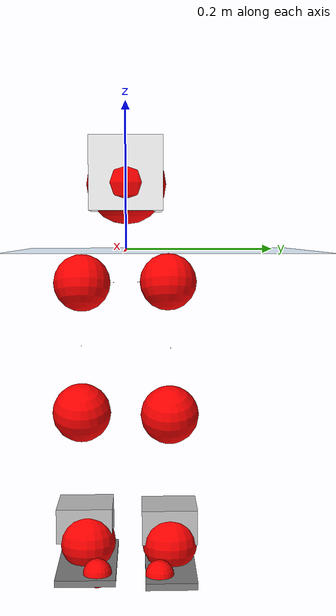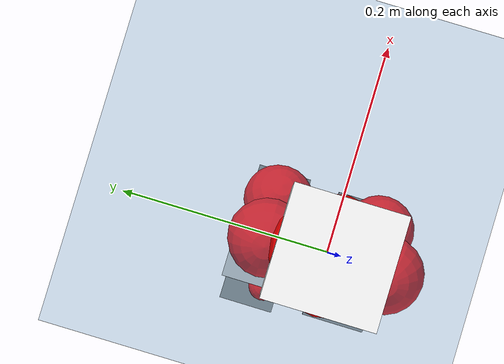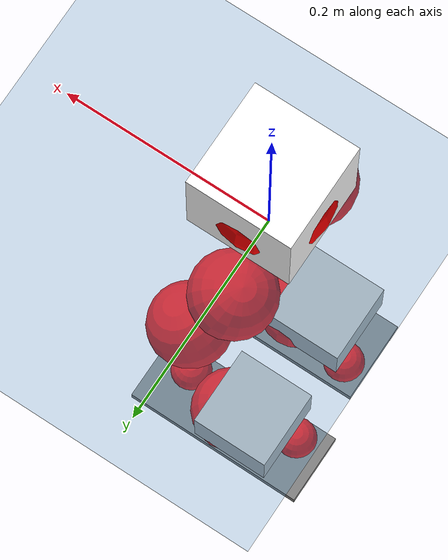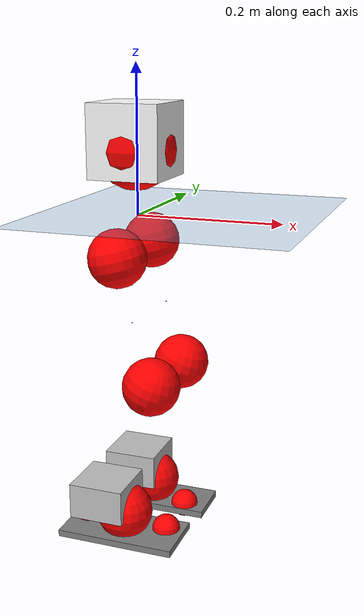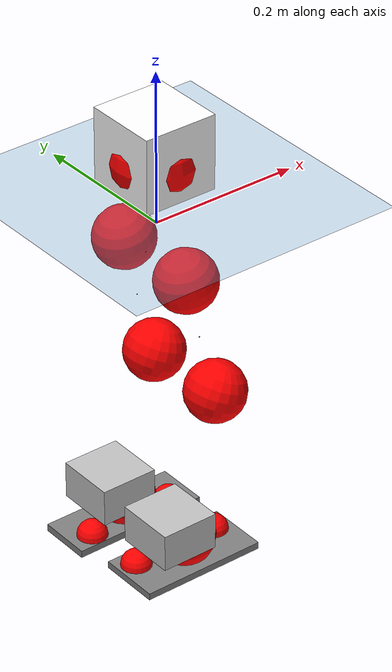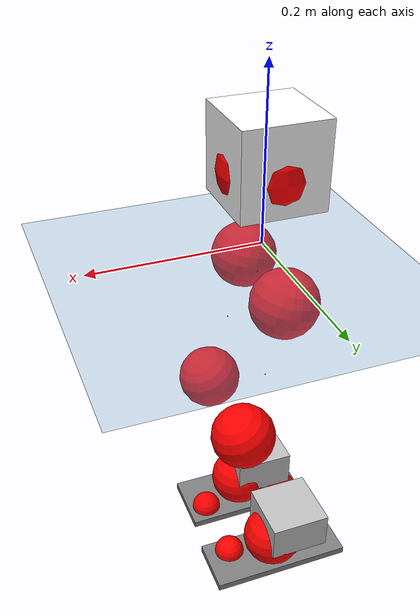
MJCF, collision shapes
<mujoco model="pi_12dof_release_v1">
  <compiler angle="radian" assetdir="assets" balanceinertia="true" inertiafromgeom="false"/>

  <option timestep="0.005" density="1.2" viscosity="2e-05"/>

  <size nkey="1"/>

  <visual>
    <quality shadowsize="8192"/>
    <map shadowclip="0.5"/>
  </visual>

  <default>
    <default class="/">
      <joint armature="0.01" damping="0.01" frictionloss="0.01"/>
      <geom contype="0" conaffinity="0" group="1" solref="-1000 -80"/>
      <site size="0.01 0.005 0.005" group="5"/>
      <general forcelimited="true" biastype="affine" gainprm="20" biasprm="0 -20 -0.5"/>
      <default class="foot">
        <geom size="0.0845 0.036 0.005" type="box" condim="6" group="4" priority="1" friction="0.9 0.2 0.2" solimp="0.015 1 0.005"/>
      </default>
      <default class="reward_collision_sphere">
        <geom group="5" rgba="1 0 0 1"/>
      </default>
    </default>
  </default>

  <asset>
    <texture type="skybox" colorspace="auto" name="//unnamed_texture_0" builtin="gradient" rgb1="0.95 0.95 0.95" rgb2="0.95 0.95 0.95" width="100" height="600"/>
    <texture type="2d" colorspace="auto" name="texplane" builtin="checker" rgb1="0.345 0.575 0.748" rgb2="0.345 0.575 0.748" markrgb="1 1 1" width="512" height="512"/>
    <material name="MatPlane" class="/" texture="texplane" texuniform="true" texrepeat="2 2" specular="0.9"/>
    <mesh name="baselink_1" class="/" file="baselink_1.STL"/>
    <mesh name="r_hip_pitch_link" class="/" file="r_hip_pitch_link.STL"/>
    <mesh name="r_hip_roll_link" class="/" file="r_hip_roll_link.STL"/>
    <mesh name="r_thigh_link" class="/" file="r_thigh_link.STL"/>
    <mesh name="r_calf_link" class="/" file="r_calf_link.STL"/>
    <mesh name="r_ankle_pitch_link" class="/" file="r_ankle_pitch_link.STL"/>
    <mesh name="r_ankle_roll_link" class="/" file="r_ankle_roll_link.STL"/>
    <mesh name="l_hip_pitch_link" class="/" file="l_hip_pitch_link.STL"/>
    <mesh name="l_hip_roll_link" class="/" file="l_hip_roll_link.STL"/>
    <mesh name="l_thigh_link" class="/" file="l_thigh_link.STL"/>
    <mesh name="l_calf_link" class="/" file="l_calf_link.STL"/>
    <mesh name="l_ankle_pitch_link" class="/" file="l_ankle_pitch_link.STL"/>
    <mesh name="l_ankle_roll_link" class="/" file="l_ankle_roll_link.STL"/>
  </asset>

  <worldbody>
    <geom name="floor" class="/" size="100 100 0.125" type="plane" group="0" material="MatPlane"/>
    <light name="toplight_shadow" class="/" pos="0 0 5" dir="0.0990148 0.0990148 -0.990148" type="directional" ambient="0.04 0.04 0.04" diffuse="0.55 0.55 0.55" specular="0.12 0.12 0.12"/>
    <light name="toplight_fill" class="/" pos="0 0 5" dir="0.0990148 0.0990148 -0.990148" type="directional" castshadow="false" ambient="0.04 0.04 0.04" diffuse="0.3 0.3 0.3" specular="0.08 0.08 0.08"/>
    <body name="trunk" pos="-0.00205677 0.000444808 -0.00277687" quat="0.999999 -0.000356817 0.000168794 -0.00115972">
      <inertial pos="-0.000691347 0.00212395 0.0514203" quat="0.695897 0.00398056 0.0128893 0.718015" mass="2.08277" diaginertia="0.00500623 0.00264402 0.0153159"/>
      <joint name="//unnamed_joint_0" type="free"/>
      <geom name="//unnamed_geom_1" class="/" type="mesh" density="0" rgba="1 1 1 1" mesh="baselink_1"/>
      <geom name="//unnamed_geom_2" class="/" size="0.049196 0.049196 0.049196" pos="0 0 0.10373" type="box" rgba="1 1 1 1"/>
      <geom name="//unnamed_geom_3" class="reward_collision_sphere" size="0.0541156" pos="0 0 0.0907634"/>
      <site name="imu" class="/" pos="0.0134814 0.00651398 -0.0129279" size="0.0098392"/>
      <camera name="track" class="/" pos="0 -1.56488 0" quat="0.707107 0.707107 0 0" mode="trackcom"/>
      <camera name="ego_camera" class="/" pos="0.0654525 0 0.233391" quat="-0.5 -0.5 0.5 0.5"/>
      <body name="r_hip_pitch_link" pos="-0.00139099 -0.0181539 -0.0430378" quat="0.992208 0.000216163 -0.124592 -0.000452113">
        <inertial pos="-0.00196234 -0.0438024 -0.00116121" quat="-0.0261489 0.705281 -0.0217173 0.708112" mass="0.352393" diaginertia="5.48191e-05 2.88483e-05 0.000314985"/>
        <joint name="r_hip_pitch_joint" class="/" pos="0 0 0" axis="0.00825084 -0.999966 0.000359312" stiffness="0.00151406" range="-1.77084 1.23838" armature="0.00850096" damping="0.0205704" frictionloss="0.0108811"/>
        <geom name="//unnamed_geom_4" class="/" type="mesh" density="0" rgba="0.75294 0.75294 0.75294 1" mesh="r_hip_pitch_link"/>
        <geom name="//unnamed_geom_5" class="/" size="0.00049196 0.00049196 0.00049196" type="box" rgba="0.75294 0.75294 0.75294 1"/>
        <body name="r_hip_roll_link" pos="-0.0011584 -0.043844 -0.000449489" quat="1 0.000321622 -0.000365034 0.000324885">
          <inertial pos="-0.00138189 -5.17672e-05 -0.0776545" quat="0.706365 -0.0806509 -0.0717896 0.699565" mass="0.361585" diaginertia="0.00016908 7.79e-05 0.000472101"/>
          <joint name="r_hip_roll_joint" class="/" pos="0 0 0" axis="-0.999954 0.00951665 0.00128212" range="-0.121432 0.503439" armature="0.011174" damping="0" frictionloss="0.00864797"/>
          <geom name="//unnamed_geom_6" class="/" type="mesh" density="0" rgba="0.75294 0.75294 0.75294 1" mesh="r_hip_roll_link"/>
          <geom name="//unnamed_geom_7" class="/" size="0.00049196 0.00049196 0.00049196" type="box" rgba="0.75294 0.75294 0.75294 1"/>
          <geom name="//unnamed_geom_8" class="reward_collision_sphere" size="0.0393568"/>
          <body name="r_thigh_link" pos="-0.00186776 -0.000347161 -0.0873729" quat="1 3.79035e-05 -2.33823e-05 -2.93731e-05">
            <inertial pos="-0.00148589 -0.00191197 -0.0593337" quat="0.736329 0.67662 0.000845397 0.00185353" mass="0.106509" diaginertia="6.43138e-05 2.69173e-05 0.000211377"/>
            <joint name="r_thigh_joint" class="/" pos="0 0 0" axis="0.0115892 0.00708453 -0.999908" range="-0.258869 0.642747" armature="0.010396" damping="0" frictionloss="0.0105102"/>
            <geom name="//unnamed_geom_9" class="/" type="mesh" density="0" rgba="0.75294 0.75294 0.75294 1" mesh="r_thigh_link"/>
            <geom name="//unnamed_geom_10" class="/" size="0.00049196 0.00049196 0.00049196" type="box" rgba="0.75294 0.75294 0.75294 1"/>
            <body name="r_calf_link" pos="0.00308222 0.00135676 -0.0912506" quat="0.947637 0.000106956 0.319349 -8.30385e-06">
              <inertial pos="-0.00287096 -0.00304493 -0.0905939" quat="0.999983 -0.00299299 -0.000234148 0.0050464" mass="0.768286" diaginertia="0.00171589 0.00105831 0.000646171"/>
              <joint name="r_calf_joint" class="/" pos="0 0 0" axis="0.0092041 -0.999956 -0.00181067" range="-1.64569 0.650817" armature="0.00897804" damping="0.00977478" frictionloss="0.0102881"/>
              <geom name="//unnamed_geom_11" class="/" type="mesh" density="0" rgba="0.75294 0.75294 0.75294 1" mesh="r_calf_link"/>
              <geom name="//unnamed_geom_12" class="/" size="0.00049196 0.00049196 0.00049196" type="box" rgba="0.75294 0.75294 0.75294 1"/>
              <geom name="//unnamed_geom_13" class="reward_collision_sphere" size="0.0393568"/>
              <body name="r_ankle_pitch_link" pos="0.00252029 -0.000693764 -0.182511" quat="0.980059 -0.00130847 -0.198703 -0.000377275">
                <inertial pos="0.00465553 0.00277613 0.000247422" quat="-0.0047554 0.705256 -0.0036584 0.708927" mass="0.172131" diaginertia="0.00015012 6.49521e-05 0.000438273"/>
                <joint name="r_ankle_pitch_joint" class="/" pos="0 0 0" axis="-0.00856815 -0.999932 -0.00792083" stiffness="0.00812595" range="-1.28808 0.483592" armature="0.00964295" damping="0.0145321" frictionloss="0.0102336"/>
                <geom name="//unnamed_geom_14" class="/" type="mesh" density="0" rgba="0.75294 0.75294 0.75294 1" mesh="r_ankle_pitch_link"/>
                <geom name="//unnamed_geom_15" class="/" size="0.0383729 0.0393568 0.024598" type="box" rgba="0.75294 0.75294 0.75294 1"/>
                <body name="r_ankle_roll_link" pos="0.0688144 0.00462797 0.00115361" quat="1 -3.42e-05 -2.27758e-05 3.82781e-05">
                  <inertial pos="-0.0200321 -0.00127912 -0.020342" quat="0.553005 0.428918 0.445738 0.558151" mass="0.49339" diaginertia="0.000604164 0.000303971 0.00105387"/>
                  <joint name="r_ankle_roll_joint" class="/" pos="0 0 0" axis="-0.999998 0.00136937 -0.00107658" stiffness="0.0027758" range="-0.104148 0.135625" armature="0.0098917" damping="0.012907" frictionloss="0.00850975"/>
                  <geom name="//unnamed_geom_16" class="/" type="mesh" density="0" rgba="0.75294 0.75294 0.75294 1" mesh="r_ankle_roll_link"/>
                  <geom name="//unnamed_geom_17" class="/" type="mesh" rgba="0.75294 0.75294 0.75294 1" mesh="r_ankle_roll_link"/>
                  <geom name="right_foot" class="foot" size="0.0837934 0.0408906 0.00454773" pos="-0.0445077 0 -0.0570513"/>
                  <geom name="//unnamed_geom_19" class="reward_collision_sphere" size="0.0393568" pos="-0.043635 0 -0.0259324"/>
                  <geom name="//unnamed_geom_20" class="reward_collision_sphere" size="0.0196784" pos="0.0130905 0.0156488 -0.0518648"/>
                  <geom name="//unnamed_geom_21" class="reward_collision_sphere" size="0.0196784" pos="-0.104724 0.0156488 -0.0518648"/>
                  <site name="right_foot" class="foot" pos="-0.0445077 0 -0.0570513" size="0.0098392"/>
                </body>
              </body>
            </body>
          </body>
        </body>
      </body>
      <body name="l_hip_pitch_link" pos="-0.00158923 0.015378 -0.0426996" quat="0.992188 0.000477947 -0.124752 0.000101003">
        <inertial pos="0.00134942 0.042358 -0.000595307" quat="-0.0375067 0.705421 0.030459 0.70714" mass="0.372147" diaginertia="6.55942e-05 2.99124e-05 0.000366086"/>
        <joint name="l_hip_pitch_joint" class="/" pos="0 0 0" axis="-0.00580046 0.999934 -0.00993315" stiffness="0.00252954" range="-1.20944 1.73941" armature="0.0107722" damping="0.0101595" frictionloss="0.00955196"/>
        <geom name="//unnamed_geom_22" class="/" type="mesh" density="0" rgba="0.75294 0.75294 0.75294 1" mesh="l_hip_pitch_link"/>
        <geom name="//unnamed_geom_23" class="/" size="0.00049196 0.00049196 0.00049196" type="box" rgba="0.75294 0.75294 0.75294 1"/>
        <body name="l_hip_roll_link" pos="0.000398812 0.0418652 0.000190442" quat="1 8.58071e-05 -2.14912e-06 -8.17494e-06">
          <inertial pos="-0.00213128 0.00136816 -0.0776163" quat="0.698861 -0.0776299 -0.0785534 0.70668" mass="0.377894" diaginertia="0.000174757 8.31806e-05 0.000485487"/>
          <joint name="l_hip_roll_joint" class="/" pos="0 0 0" axis="-1 -0.000206768 -0.000344335" stiffness="0.0100045" range="-0.497324 0.147676" armature="0.00851575" damping="0.0120494" frictionloss="0.00979496"/>
          <geom name="//unnamed_geom_24" class="/" type="mesh" density="0" rgba="0.75294 0.75294 0.75294 1" mesh="l_hip_roll_link"/>
          <geom name="//unnamed_geom_25" class="/" size="0.00049196 0.00049196 0.00049196" type="box" rgba="0.75294 0.75294 0.75294 1"/>
          <geom name="//unnamed_geom_26" class="reward_collision_sphere" size="0.0393568"/>
          <body name="l_thigh_link" pos="-0.00235382 0.00241622 -0.0918153" quat="1 0.000130071 -0.00027736 0.000228193">
            <inertial pos="0.00278316 -0.00379842 -0.0592788" quat="0.67522 0.737582 -0.00653631 -0.00295273" mass="0.105125" diaginertia="6.3043e-05 2.87696e-05 0.000206044"/>
            <joint name="l_thigh_joint" class="/" pos="0 0 0" axis="0.000302998 0.00125215 -0.999999" stiffness="0.0063967" range="-0.605727 0.244505" armature="0.00970985" damping="0.00780762" frictionloss="0.00976709"/>
            <geom name="//unnamed_geom_27" class="/" type="mesh" density="0" rgba="0.75294 0.75294 0.75294 1" mesh="l_thigh_link"/>
            <geom name="//unnamed_geom_28" class="/" size="0.00049196 0.00049196 0.00049196" type="box" rgba="0.75294 0.75294 0.75294 1"/>
            <body name="l_calf_link" pos="0.00160774 -0.00198653 -0.0913123" quat="0.947662 -0.000329095 0.319274 -0.0010201">
              <inertial pos="0.000202486 0.00326425 -0.0926716" quat="0.999984 0.0026127 0.000335817 0.00493823" mass="0.810087" diaginertia="0.0017813 0.00102135 0.000645599"/>
              <joint name="l_calf_joint" class="/" pos="0 0 0" axis="0.0046065 0.999973 0.00567644" range="-0.670115 1.65863" armature="0.00969713" damping="0.00760167" frictionloss="0.0110608"/>
              <geom name="//unnamed_geom_29" class="/" type="mesh" density="0" rgba="0.75294 0.75294 0.75294 1" mesh="l_calf_link"/>
              <geom name="//unnamed_geom_30" class="/" size="0.00049196 0.00049196 0.00049196" type="box" rgba="0.75294 0.75294 0.75294 1"/>
              <geom name="//unnamed_geom_31" class="reward_collision_sphere" size="0.0393568"/>
              <body name="l_ankle_pitch_link" pos="0.00266817 0.00104078 -0.18207" quat="0.980045 -4.04911e-05 -0.198778 0.000167694">
                <inertial pos="0.00166087 0.00139343 -0.000556054" quat="-0.00315819 0.707793 0.00351165 0.706404" mass="0.162257" diaginertia="0.000158649 6.42716e-05 0.000439565"/>
                <joint name="l_ankle_pitch_joint" class="/" pos="0 0 0" axis="-0.00239455 0.999997 -0.000494328" range="-0.511072 1.28829" armature="0.00917355" damping="0.00468213" frictionloss="0.0105997"/>
                <geom name="//unnamed_geom_32" class="/" type="mesh" density="0" rgba="0.75294 0.75294 0.75294 1" mesh="l_ankle_pitch_link"/>
                <geom name="//unnamed_geom_33" class="/" size="0.0383729 0.0393568 0.024598" type="box" rgba="0.75294 0.75294 0.75294 1"/>
                <body name="l_ankle_roll_link" pos="0.0654592 0.000536373 0.000294621" quat="1 -0.000260603 -0.000455897 -0.000336829">
                  <inertial pos="-0.0195121 -0.0010652 -0.0188876" quat="0.560186 0.432322 0.431709 0.55939" mass="0.469084" diaginertia="0.000546481 0.000295545 0.000998449"/>
                  <joint name="l_ankle_roll_joint" class="/" pos="0 0 0" axis="-0.999958 -0.0087007 -0.00298594" range="-0.110123 0.155291" armature="0.0107425" damping="0.0164359" frictionloss="0.00977484"/>
                  <geom name="//unnamed_geom_34" class="/" type="mesh" density="0" rgba="0.75294 0.75294 0.75294 1" mesh="l_ankle_roll_link"/>
                  <geom name="//unnamed_geom_35" class="/" type="mesh" rgba="0.75294 0.75294 0.75294 1" mesh="l_ankle_roll_link"/>
                  <geom name="left_foot" class="foot" size="0.0911779 0.0352025 0.0047081" pos="-0.0445077 0 -0.0570513"/>
                  <geom name="//unnamed_geom_37" class="reward_collision_sphere" size="0.0393568" pos="-0.043635 0 -0.0259324"/>
                  <geom name="//unnamed_geom_38" class="reward_collision_sphere" size="0.0196784" pos="0.0130905 -0.0156488 -0.0518648"/>
                  <geom name="//unnamed_geom_39" class="reward_collision_sphere" size="0.0196784" pos="-0.104724 -0.0156488 -0.0518648"/>
                  <site name="left_foot" class="foot" pos="-0.0445077 0 -0.0570513" size="0.0098392"/>
                </body>
              </body>
            </body>
          </body>
        </body>
      </body>
    </body>
  </worldbody>

  <contact>
    <pair class="/" geom1="floor" geom2="right_foot" name="//unnamed_contact_1"/>
    <pair class="/" geom1="floor" geom2="left_foot" name="//unnamed_contact_0"/>
  </contact>

  <actuator>
    <general name="r_hip_pitch_joint" class="/" joint="r_hip_pitch_joint" forcerange="-20.8318 20.8318" gainprm="19.9986" biasprm="0 -19.9986 -0.465809"/>
    <general name="r_hip_roll_joint" class="/" joint="r_hip_roll_joint" forcerange="-20.1869 20.1869" gainprm="19.9986" biasprm="0 -19.9986 -0.465809"/>
    <general name="r_thigh_joint" class="/" joint="r_thigh_joint" forcerange="-22.8755 22.8755" gainprm="19.9986" biasprm="0 -19.9986 -0.465809"/>
    <general name="r_calf_joint" class="/" joint="r_calf_joint" forcerange="-18.7456 18.7456" gainprm="19.9986" biasprm="0 -19.9986 -0.465809"/>
    <general name="r_ankle_pitch_joint" class="/" joint="r_ankle_pitch_joint" forcerange="-22.6401 22.6401" gainprm="19.9986" biasprm="0 -19.9986 -0.465809"/>
    <general name="r_ankle_roll_joint" class="/" joint="r_ankle_roll_joint" forcerange="-22.7376 22.7376" gainprm="19.9986" biasprm="0 -19.9986 -0.465809"/>
    <general name="l_hip_pitch_joint" class="/" joint="l_hip_pitch_joint" forcerange="-21.6332 21.6332" gainprm="19.9986" biasprm="0 -19.9986 -0.465809"/>
    <general name="l_hip_roll_joint" class="/" joint="l_hip_roll_joint" forcerange="-21.4734 21.4734" gainprm="19.9986" biasprm="0 -19.9986 -0.465809"/>
    <general name="l_thigh_joint" class="/" joint="l_thigh_joint" forcerange="-20.4281 20.4281" gainprm="19.9986" biasprm="0 -19.9986 -0.465809"/>
    <general name="l_calf_joint" class="/" joint="l_calf_joint" forcerange="-20.3378 20.3378" gainprm="19.9986" biasprm="0 -19.9986 -0.465809"/>
    <general name="l_ankle_pitch_joint" class="/" joint="l_ankle_pitch_joint" forcerange="-22.6151 22.6151" gainprm="19.9986" biasprm="0 -19.9986 -0.465809"/>
    <general name="l_ankle_roll_joint" class="/" joint="l_ankle_roll_joint" forcerange="-19.4162 19.4162" gainprm="19.9986" biasprm="0 -19.9986 -0.465809"/>
  </actuator>

  <sensor>
    <gyro site="imu" name="imu_angular_velocity"/>
    <velocimeter site="imu" name="imu_linear_velocity"/>
    <framelinvel objtype="site" objname="left_foot" name="left_foot_global_linear_velocity"/>
    <framelinvel objtype="site" objname="right_foot" name="right_foot_global_linear_velocity"/>
  </sensor>

  <keyframe>
    <key name="home" qpos="0 0 0.291 1 0 0 0 0.4 0 0 -0.8 0.4 0 -0.4 0 0 0.8 -0.4 0"/>
  </keyframe>
</mujoco>
